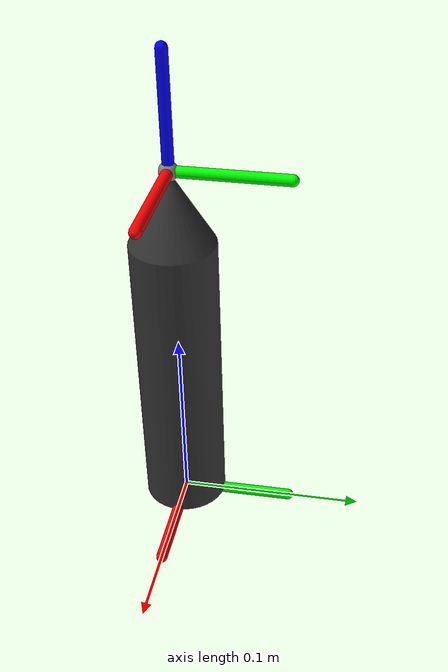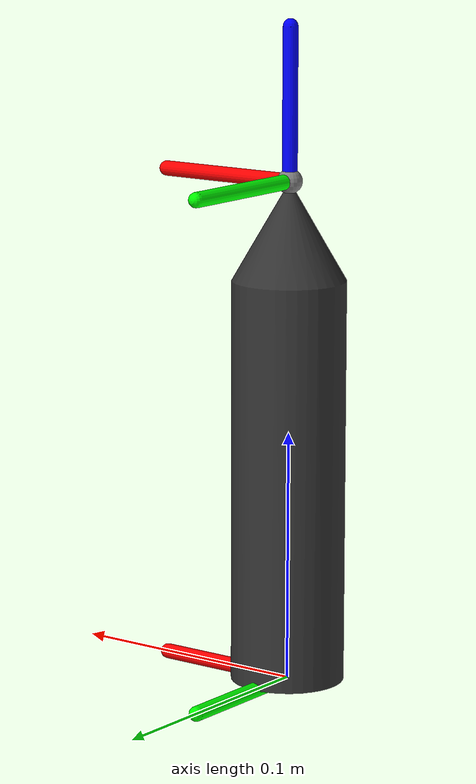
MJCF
<mujoco model="extension">
  <compiler angle="radian"/>
  <option timestep="0.01"/>

  <asset>
    <!-- Mesh for visualization -->
    <mesh name="extension_mesh" file="assets/extension.obj"/>
    <!-- Mesh for collisions -->
    <mesh name="extension_collision_mesh" file="assets/extension.stl"/>
  </asset>

  <default>
    <geom condim="3" friction="1 0.5 0.01" solref="0.02 1" solimp="0.9 0.95 0.001"/>
  </default>

  <worldbody>
    <body name="ext_base" pos="0 0 0" quat="1 0 0 0">
      <site name="ext_base_site" pos="0 0.0 0.0" quat="1 0 0 0"/>
      <inertial mass="0.33" pos="0 0 0.1" diaginertia="0.005542 0.005542 0.00008353"/>
      <geom type="capsule" fromto="0 0 0 0.06 0 0" rgba="1 0 0 1" size="0.003" contype="0" conaffinity="0"/>
      <geom type="capsule" fromto="0 0 0 0 0.06 0" rgba="0 1 0 1" size="0.003" contype="0" conaffinity="0"/>
      <geom type="capsule" fromto="0 0 0 0 0 0.06" rgba="0 0 1 1" size="0.003" contype="0" conaffinity="0"/>

      <!-- visual mesh -->
      <geom type="mesh" mesh="extension_mesh" rgba="0.2 0.2 0.2 1" contype="0" conaffinity="0" group="0"/>

      <!-- collision mesh -->
      <geom type="mesh" mesh="extension_collision_mesh" rgba="0.8 0.1 0.1 0.3" contype="1" conaffinity="1" group="3"/>

      <!-- Site at the top-->
      <body name="ext_tip" pos="0 0 0.2" quat="1 0 0 0">
        <site name="ext_tip_site" pos="0 0.0 0.0" quat="1 0 0 0"/>
        <geom type="capsule" fromto="0 0 0 0.06 0 0" rgba="1 0 0 1" size="0.003" contype="0" conaffinity="0"/>
        <geom type="capsule" fromto="0 0 0 0 0.06 0" rgba="0 1 0 1" size="0.003" contype="0" conaffinity="0"/>
        <geom type="capsule" fromto="0 0 0 0 0 0.06" rgba="0 0 1 1" size="0.003" contype="0" conaffinity="0"/>
      </body>

    </body>
  </worldbody>
</mujoco>
